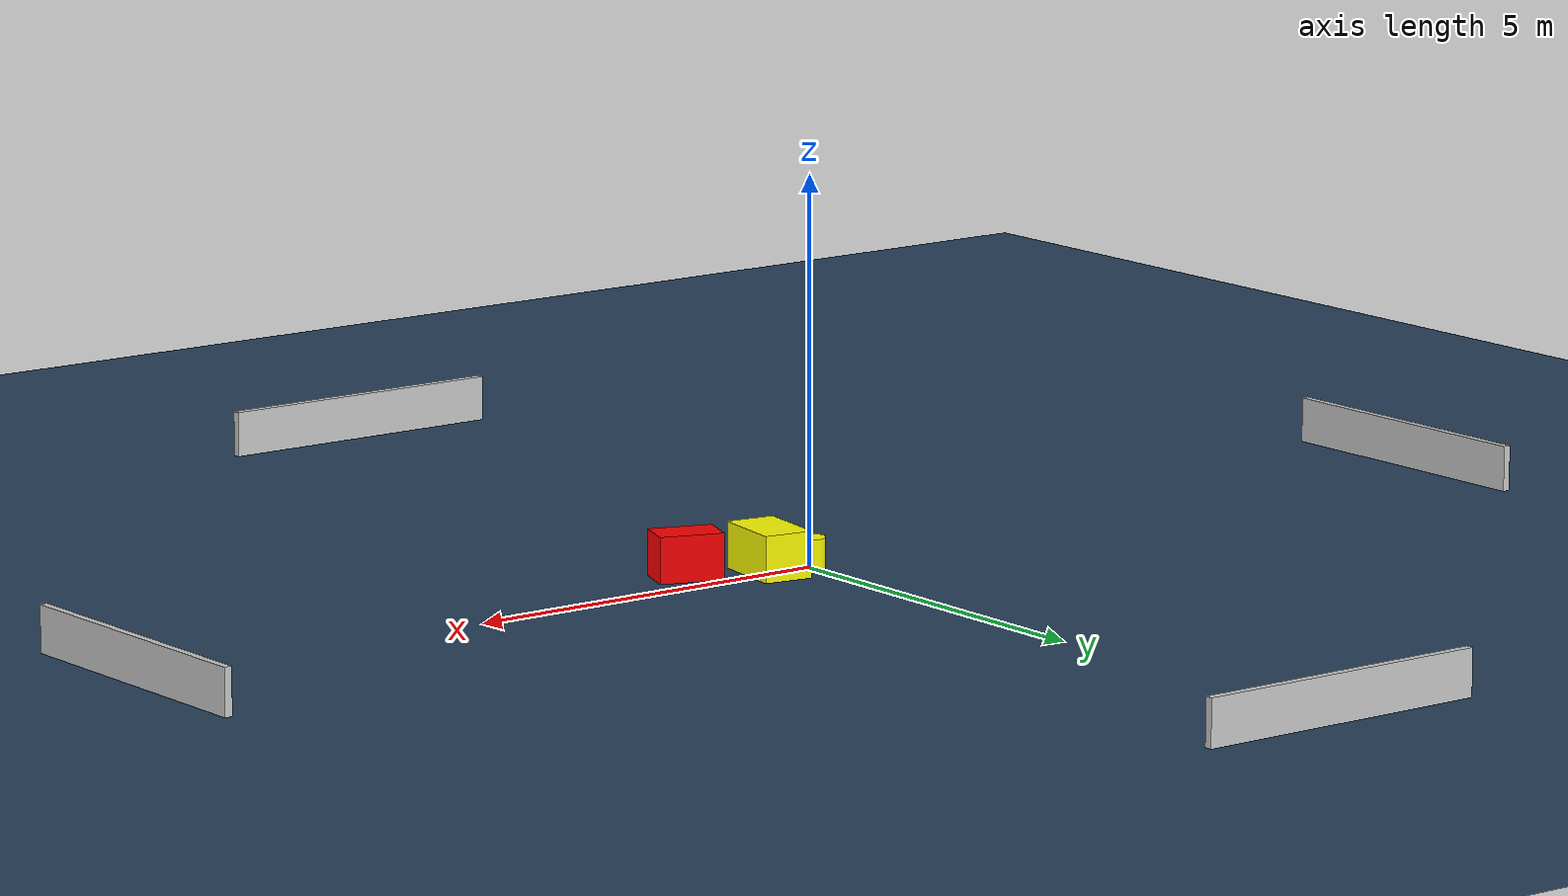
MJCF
<?xml version="1.0" ?>
<mujoco model="generated_environment">
  <option timestep="0.01" integrator="RK4" cone="elliptic"/>
  <default>
    <geom density="1"/>
  </default>
  <asset>
    <texture builtin="gradient" height="3072" name="skybox" rgb1="0.3 0.5 0.7" rgb2="0 0 0" type="skybox" width="512"/>
    <texture builtin="checker" height="300" name="groundplane" rgb1="0.2 0.3 0.4" rgb2="0.1 0.2 0.3" type="2d" width="300"/>
    <material name="groundplane" reflectance="0.2" texrepeat="5 5" texture="groundplane"/>
  </asset>
  <worldbody>
    <light dir="0 0 -1" directional="true" pos="0 0 1.5"/>
    <geom condim="3" friction="0.5 0.005 0.001" material="groundplane" name="floor" pos="0 0 0" size="0 0 0.05" type="plane"/>
    <body name="walls">
      <geom name="wall_1" condim="4" pos="-10.0 0.0 0.3" rgba="0.800000011920929 0.800000011920929 0.800000011920929 1.0" size="0.05 2.0 0.3" type="box"/>
      <geom name="wall_2" condim="4" pos="10.0 0.0 0.3" rgba="0.800000011920929 0.800000011920929 0.800000011920929 1.0" size="0.05 2.0 0.3" type="box"/>
      <geom name="wall_3" condim="4" pos="0.0 -10.0 0.3" rgba="0.800000011920929 0.800000011920929 0.800000011920929 1.0" size="2.0 0.05 0.3" type="box"/>
      <geom name="wall_4" condim="4" pos="0.0 10.0 0.3" rgba="0.800000011920929 0.800000011920929 0.800000011920929 1.0" size="2.0 0.05 0.3" type="box"/>
    </body>
    <body name="robot">
      <joint name="joint_x" type="slide" pos="0 0 0" axis="1 0 0"/>
      <joint name="joint_y" type="slide" pos="0 0 0" axis="0 1 0"/>
      <geom name="robot" type="cylinder" pos="0.0 0.0 0.2" size="0.2 0.2 0.0" mass="5.0" friction="1.0 0.005 0.0001" condim="4" rgba="1.0 1.0 0.0 1.0"/>
    </body>
    <body name="obstacle_1_movable">
      <geom name="obstacle_1_movable" condim="4" pos="0.5705577713308134 -0.0883422907515107 0.3" euler="0 0 261.4520095118563" friction="0.0 0.005 0.001" rgba="1.0 1.0 0.0 1.0" size="0.501514708489722 0.326062256996004 0.3" type="box" mass="0.1"/>
      <joint type="free"/>
    </body>
    <body name="obstacle_2_static">
      <geom name="obstacle_2_static" condim="4" pos="1.5572865997345697 -0.5046083262037135 0.3" euler="0 0 250.31851282363706" friction="0.0 0.005 0.001" rgba="1.0 0.0 0.0 1.0" size="0.26344242789960953 0.4181564549334485 0.3" type="box"/>
    </body>
  </worldbody>
  <actuator>
    <motor name="actuator_x" joint="joint_x" gear="1" ctrlrange="-1 1"/>
    <motor name="actuator_y" joint="joint_y" gear="1" ctrlrange="-1 1"/>
  </actuator>
</mujoco>
